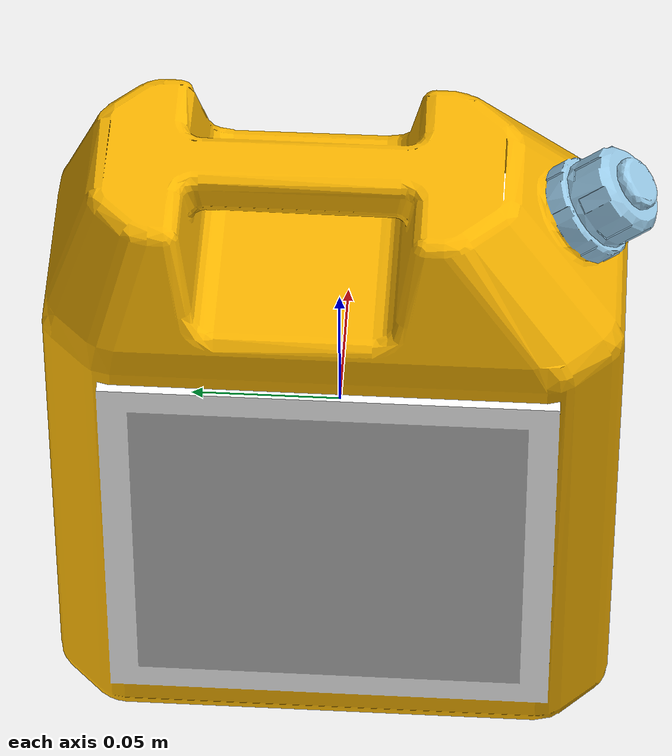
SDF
<?xml version="1.0"?>

<sdf version="1.6">
  <model name='fertiliser_can'>
    <static>true</static>
    <link name="body">
      <pose>0 0 0 0 0 0</pose>
      <inertial>
        <mass>1.0</mass>
        <inertia> <!-- inertias are tricky to compute -->
          <!-- http://gazebosim.org/tutorials?tut=inertia&cat=build_robot -->
          <ixx>0.083</ixx>       <!-- for a box: ixx = 0.083 * mass * (y*y + z*z) -->
          <ixy>0.0</ixy>         <!-- for a box: ixy = 0 -->
          <ixz>0.0</ixz>         <!-- for a box: ixz = 0 -->
          <iyy>0.083</iyy>       <!-- for a box: iyy = 0.083 * mass * (x*x + z*z) -->
          <iyz>0.0</iyz>         <!-- for a box: iyz = 0 -->
          <izz>0.083</izz>       <!-- for a box: izz = 0.083 * mass * (x*x + y*y) -->
        </inertia>
      </inertial>
      <visual name="visual">
        <geometry>
          <mesh>
            <uri>model://fertiliser_can/meshes/Fertiliser.dae</uri>
          </mesh>
        </geometry>
      </visual>

      <collision name="collision">
        <geometry>
          <box>
            <size>0.105 0.198 0.226</size>
          </box>
        </geometry>
        <pose>0 0 0.0 0 0 0</pose>
      </collision>

    </link>
  </model>
</sdf>
